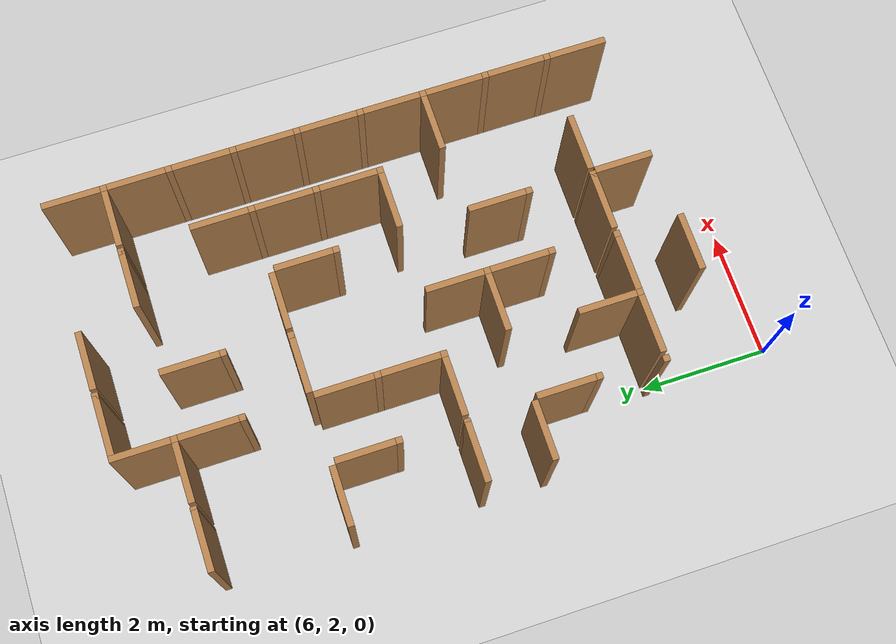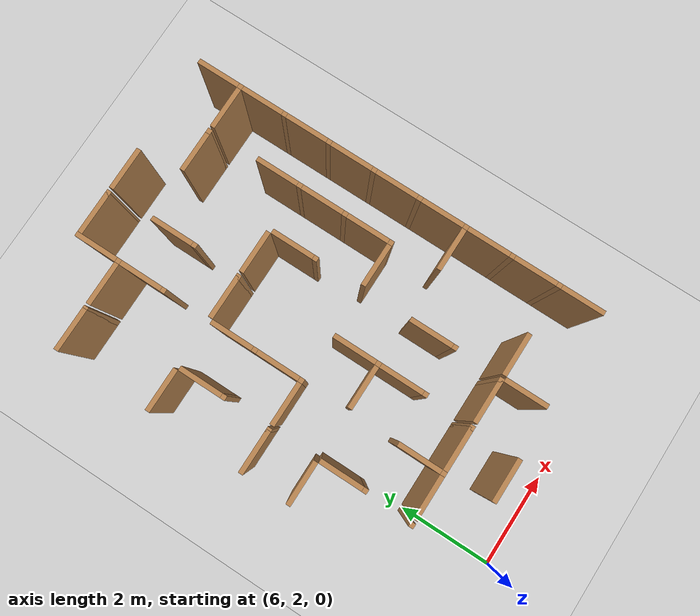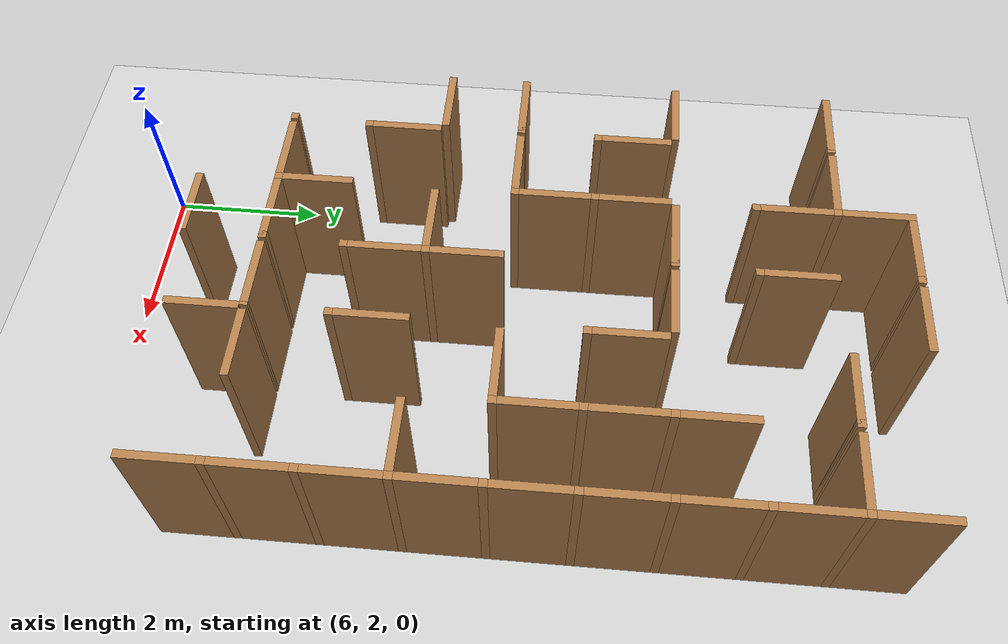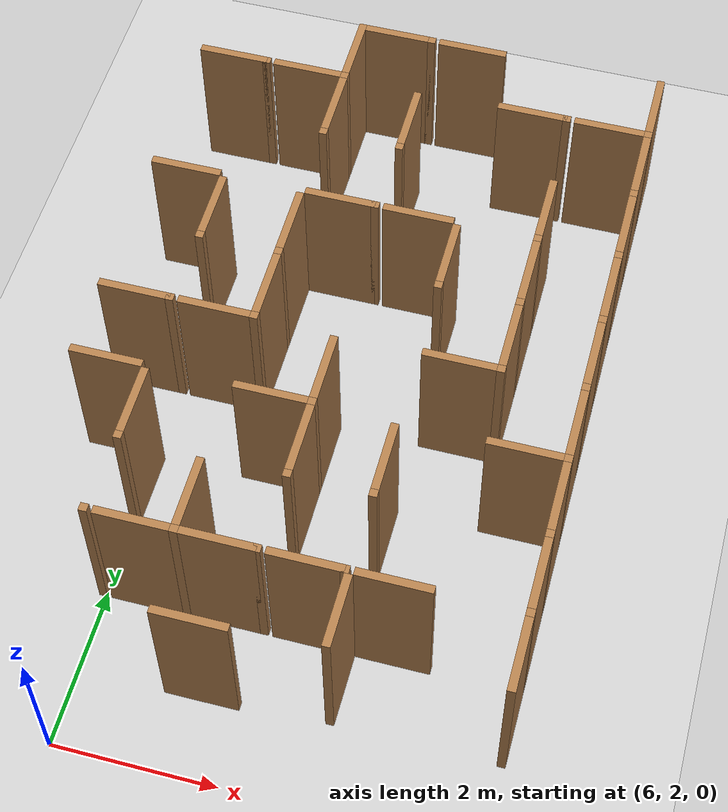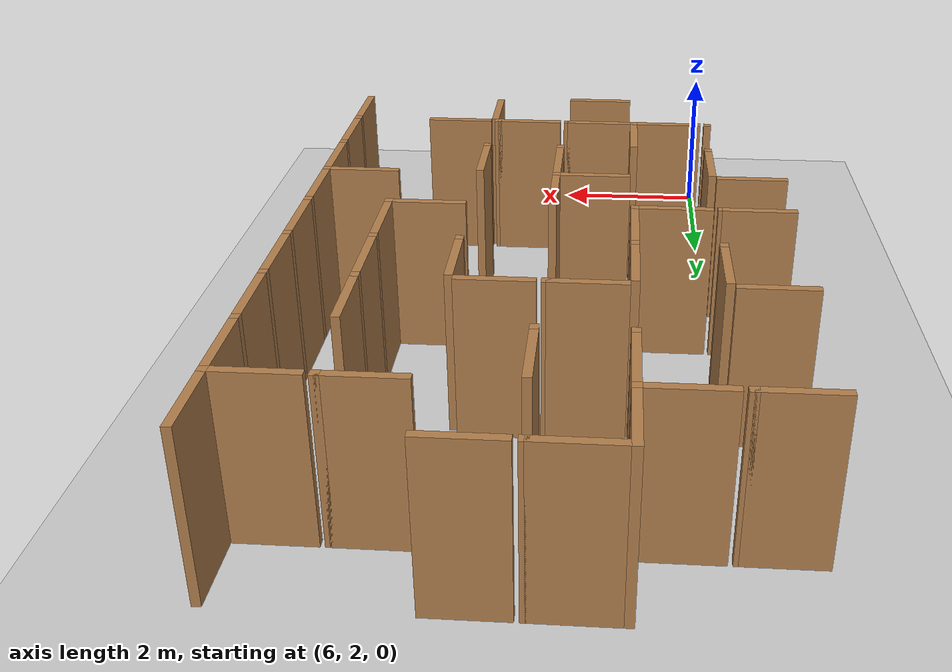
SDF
<sdf version="1.6">
 <world name="default">
  <include><uri>model://sun</uri></include>
  <model name="ground_plane">
   <static>true</static>
   <link name="link">
    <collision name="collision"><geometry><plane><size>12.0 12.0</size></plane></geometry></collision>
    <visual name="visual">
     <cast_shadows>false</cast_shadows>
     <geometry><plane><size>12.0 12.0</size></plane></geometry>
     <material>
      <script><uri>file://media/materials/scripts/gazebo.material</uri><name>Gazebo/Grey</name></script>
     </material>
    </visual>
   </link>
   <pose>6.0 6.0 0 0 0 0</pose>
  </model>
  <model name="vwall_3_9">
   <pose>9.0 3.5 1.0 0 0 0</pose>
   <link name="link">
    <collision name="collision"><geometry><box><size>0.1 0.9 2</size></box></geometry></collision>
    <visual name="visual">
     <geometry><box><size>0.1 0.9 2</size></box></geometry>
     <material>
      <script><uri>file://media/materials/scripts/gazebo.material</uri><name>Gazebo/Wood</name></script>
     </material>
    </visual>
   </link>
  </model>
  <model name="vwall_3_11">
   <pose>11.0 3.5 1.0 0 0 0</pose>
   <link name="link">
    <collision name="collision"><geometry><box><size>0.1 0.9 2</size></box></geometry></collision>
    <visual name="visual">
     <geometry><box><size>0.1 0.9 2</size></box></geometry>
     <material>
      <script><uri>file://media/materials/scripts/gazebo.material</uri><name>Gazebo/Wood</name></script>
     </material>
    </visual>
   </link>
  </model>
  <model name="vwall_4_7">
   <pose>7.0 4.5 1.0 0 0 0</pose>
   <link name="link">
    <collision name="collision"><geometry><box><size>0.1 0.9 2</size></box></geometry></collision>
    <visual name="visual">
     <geometry><box><size>0.1 0.9 2</size></box></geometry>
     <material>
      <script><uri>file://media/materials/scripts/gazebo.material</uri><name>Gazebo/Wood</name></script>
     </material>
    </visual>
   </link>
  </model>
  <model name="joint_7.0_4.0">
   <pose>7.0 4.0 1.0 0 0 0</pose>
   <link name="link">
    <collision name="collision"><geometry><box><size>0.1 0.1 2</size></box></geometry></collision>
    <visual name="visual">
     <geometry><box><size>0.1 0.1 2</size></box></geometry>
     <material>
      <script><uri>file://media/materials/scripts/gazebo.material</uri><name>Gazebo/Wood</name></script>
     </material>
    </visual>
   </link>
  </model>
  <model name="vwall_4_11">
   <pose>11.0 4.5 1.0 0 0 0</pose>
   <link name="link">
    <collision name="collision"><geometry><box><size>0.1 0.9 2</size></box></geometry></collision>
    <visual name="visual">
     <geometry><box><size>0.1 0.9 2</size></box></geometry>
     <material>
      <script><uri>file://media/materials/scripts/gazebo.material</uri><name>Gazebo/Wood</name></script>
     </material>
    </visual>
   </link>
  </model>
  <model name="joint_11.0_4.0">
   <pose>11.0 4.0 1.0 0 0 0</pose>
   <link name="link">
    <collision name="collision"><geometry><box><size>0.1 0.1 2</size></box></geometry></collision>
    <visual name="visual">
     <geometry><box><size>0.1 0.1 2</size></box></geometry>
     <material>
      <script><uri>file://media/materials/scripts/gazebo.material</uri><name>Gazebo/Wood</name></script>
     </material>
    </visual>
   </link>
  </model>
  <model name="vwall_5_6">
   <pose>6.0 5.5 1.0 0 0 0</pose>
   <link name="link">
    <collision name="collision"><geometry><box><size>0.1 0.9 2</size></box></geometry></collision>
    <visual name="visual">
     <geometry><box><size>0.1 0.9 2</size></box></geometry>
     <material>
      <script><uri>file://media/materials/scripts/gazebo.material</uri><name>Gazebo/Wood</name></script>
     </material>
    </visual>
   </link>
  </model>
  <model name="joint_6.0_5.0">
   <pose>6.0 5.0 1.0 0 0 0</pose>
   <link name="link">
    <collision name="collision"><geometry><box><size>0.1 0.1 2</size></box></geometry></collision>
    <visual name="visual">
     <geometry><box><size>0.1 0.1 2</size></box></geometry>
     <material>
      <script><uri>file://media/materials/scripts/gazebo.material</uri><name>Gazebo/Wood</name></script>
     </material>
    </visual>
   </link>
  </model>
  <model name="vwall_5_8">
   <pose>8.0 5.5 1.0 0 0 0</pose>
   <link name="link">
    <collision name="collision"><geometry><box><size>0.1 0.9 2</size></box></geometry></collision>
    <visual name="visual">
     <geometry><box><size>0.1 0.9 2</size></box></geometry>
     <material>
      <script><uri>file://media/materials/scripts/gazebo.material</uri><name>Gazebo/Wood</name></script>
     </material>
    </visual>
   </link>
  </model>
  <model name="joint_8.0_5.0">
   <pose>8.0 5.0 1.0 0 0 0</pose>
   <link name="link">
    <collision name="collision"><geometry><box><size>0.1 0.1 2</size></box></geometry></collision>
    <visual name="visual">
     <geometry><box><size>0.1 0.1 2</size></box></geometry>
     <material>
      <script><uri>file://media/materials/scripts/gazebo.material</uri><name>Gazebo/Wood</name></script>
     </material>
    </visual>
   </link>
  </model>
  <model name="vwall_5_9">
   <pose>9.0 5.5 1.0 0 0 0</pose>
   <link name="link">
    <collision name="collision"><geometry><box><size>0.1 0.9 2</size></box></geometry></collision>
    <visual name="visual">
     <geometry><box><size>0.1 0.9 2</size></box></geometry>
     <material>
      <script><uri>file://media/materials/scripts/gazebo.material</uri><name>Gazebo/Wood</name></script>
     </material>
    </visual>
   </link>
  </model>
  <model name="joint_9.0_5.0">
   <pose>9.0 5.0 1.0 0 0 0</pose>
   <link name="link">
    <collision name="collision"><geometry><box><size>0.1 0.1 2</size></box></geometry></collision>
    <visual name="visual">
     <geometry><box><size>0.1 0.1 2</size></box></geometry>
     <material>
      <script><uri>file://media/materials/scripts/gazebo.material</uri><name>Gazebo/Wood</name></script>
     </material>
    </visual>
   </link>
  </model>
  <model name="vwall_5_11">
   <pose>11.0 5.5 1.0 0 0 0</pose>
   <link name="link">
    <collision name="collision"><geometry><box><size>0.1 0.9 2</size></box></geometry></collision>
    <visual name="visual">
     <geometry><box><size>0.1 0.9 2</size></box></geometry>
     <material>
      <script><uri>file://media/materials/scripts/gazebo.material</uri><name>Gazebo/Wood</name></script>
     </material>
    </visual>
   </link>
  </model>
  <model name="joint_11.0_5.0">
   <pose>11.0 5.0 1.0 0 0 0</pose>
   <link name="link">
    <collision name="collision"><geometry><box><size>0.1 0.1 2</size></box></geometry></collision>
    <visual name="visual">
     <geometry><box><size>0.1 0.1 2</size></box></geometry>
     <material>
      <script><uri>file://media/materials/scripts/gazebo.material</uri><name>Gazebo/Wood</name></script>
     </material>
    </visual>
   </link>
  </model>
  <model name="vwall_6_8">
   <pose>8.0 6.5 1.0 0 0 0</pose>
   <link name="link">
    <collision name="collision"><geometry><box><size>0.1 0.9 2</size></box></geometry></collision>
    <visual name="visual">
     <geometry><box><size>0.1 0.9 2</size></box></geometry>
     <material>
      <script><uri>file://media/materials/scripts/gazebo.material</uri><name>Gazebo/Wood</name></script>
     </material>
    </visual>
   </link>
  </model>
  <model name="joint_8.0_6.0">
   <pose>8.0 6.0 1.0 0 0 0</pose>
   <link name="link">
    <collision name="collision"><geometry><box><size>0.1 0.1 2</size></box></geometry></collision>
    <visual name="visual">
     <geometry><box><size>0.1 0.1 2</size></box></geometry>
     <material>
      <script><uri>file://media/materials/scripts/gazebo.material</uri><name>Gazebo/Wood</name></script>
     </material>
    </visual>
   </link>
  </model>
  <model name="vwall_6_11">
   <pose>11.0 6.5 1.0 0 0 0</pose>
   <link name="link">
    <collision name="collision"><geometry><box><size>0.1 0.9 2</size></box></geometry></collision>
    <visual name="visual">
     <geometry><box><size>0.1 0.9 2</size></box></geometry>
     <material>
      <script><uri>file://media/materials/scripts/gazebo.material</uri><name>Gazebo/Wood</name></script>
     </material>
    </visual>
   </link>
  </model>
  <model name="joint_11.0_6.0">
   <pose>11.0 6.0 1.0 0 0 0</pose>
   <link name="link">
    <collision name="collision"><geometry><box><size>0.1 0.1 2</size></box></geometry></collision>
    <visual name="visual">
     <geometry><box><size>0.1 0.1 2</size></box></geometry>
     <material>
      <script><uri>file://media/materials/scripts/gazebo.material</uri><name>Gazebo/Wood</name></script>
     </material>
    </visual>
   </link>
  </model>
  <model name="vwall_7_7">
   <pose>7.0 7.5 1.0 0 0 0</pose>
   <link name="link">
    <collision name="collision"><geometry><box><size>0.1 0.9 2</size></box></geometry></collision>
    <visual name="visual">
     <geometry><box><size>0.1 0.9 2</size></box></geometry>
     <material>
      <script><uri>file://media/materials/scripts/gazebo.material</uri><name>Gazebo/Wood</name></script>
     </material>
    </visual>
   </link>
  </model>
  <model name="joint_7.0_7.0">
   <pose>7.0 7.0 1.0 0 0 0</pose>
   <link name="link">
    <collision name="collision"><geometry><box><size>0.1 0.1 2</size></box></geometry></collision>
    <visual name="visual">
     <geometry><box><size>0.1 0.1 2</size></box></geometry>
     <material>
      <script><uri>file://media/materials/scripts/gazebo.material</uri><name>Gazebo/Wood</name></script>
     </material>
    </visual>
   </link>
  </model>
  <model name="vwall_7_10">
   <pose>10.0 7.5 1.0 0 0 0</pose>
   <link name="link">
    <collision name="collision"><geometry><box><size>0.1 0.9 2</size></box></geometry></collision>
    <visual name="visual">
     <geometry><box><size>0.1 0.9 2</size></box></geometry>
     <material>
      <script><uri>file://media/materials/scripts/gazebo.material</uri><name>Gazebo/Wood</name></script>
     </material>
    </visual>
   </link>
  </model>
  <model name="joint_10.0_7.0">
   <pose>10.0 7.0 1.0 0 0 0</pose>
   <link name="link">
    <collision name="collision"><geometry><box><size>0.1 0.1 2</size></box></geometry></collision>
    <visual name="visual">
     <geometry><box><size>0.1 0.1 2</size></box></geometry>
     <material>
      <script><uri>file://media/materials/scripts/gazebo.material</uri><name>Gazebo/Wood</name></script>
     </material>
    </visual>
   </link>
  </model>
  <model name="vwall_7_11">
   <pose>11.0 7.5 1.0 0 0 0</pose>
   <link name="link">
    <collision name="collision"><geometry><box><size>0.1 0.9 2</size></box></geometry></collision>
    <visual name="visual">
     <geometry><box><size>0.1 0.9 2</size></box></geometry>
     <material>
      <script><uri>file://media/materials/scripts/gazebo.material</uri><name>Gazebo/Wood</name></script>
     </material>
    </visual>
   </link>
  </model>
  <model name="joint_11.0_7.0">
   <pose>11.0 7.0 1.0 0 0 0</pose>
   <link name="link">
    <collision name="collision"><geometry><box><size>0.1 0.1 2</size></box></geometry></collision>
    <visual name="visual">
     <geometry><box><size>0.1 0.1 2</size></box></geometry>
     <material>
      <script><uri>file://media/materials/scripts/gazebo.material</uri><name>Gazebo/Wood</name></script>
     </material>
    </visual>
   </link>
  </model>
  <model name="vwall_8_6">
   <pose>6.0 8.5 1.0 0 0 0</pose>
   <link name="link">
    <collision name="collision"><geometry><box><size>0.1 0.9 2</size></box></geometry></collision>
    <visual name="visual">
     <geometry><box><size>0.1 0.9 2</size></box></geometry>
     <material>
      <script><uri>file://media/materials/scripts/gazebo.material</uri><name>Gazebo/Wood</name></script>
     </material>
    </visual>
   </link>
  </model>
  <model name="joint_6.0_8.0">
   <pose>6.0 8.0 1.0 0 0 0</pose>
   <link name="link">
    <collision name="collision"><geometry><box><size>0.1 0.1 2</size></box></geometry></collision>
    <visual name="visual">
     <geometry><box><size>0.1 0.1 2</size></box></geometry>
     <material>
      <script><uri>file://media/materials/scripts/gazebo.material</uri><name>Gazebo/Wood</name></script>
     </material>
    </visual>
   </link>
  </model>
  <model name="vwall_8_7">
   <pose>7.0 8.5 1.0 0 0 0</pose>
   <link name="link">
    <collision name="collision"><geometry><box><size>0.1 0.9 2</size></box></geometry></collision>
    <visual name="visual">
     <geometry><box><size>0.1 0.9 2</size></box></geometry>
     <material>
      <script><uri>file://media/materials/scripts/gazebo.material</uri><name>Gazebo/Wood</name></script>
     </material>
    </visual>
   </link>
  </model>
  <model name="joint_7.0_8.0">
   <pose>7.0 8.0 1.0 0 0 0</pose>
   <link name="link">
    <collision name="collision"><geometry><box><size>0.1 0.1 2</size></box></geometry></collision>
    <visual name="visual">
     <geometry><box><size>0.1 0.1 2</size></box></geometry>
     <material>
      <script><uri>file://media/materials/scripts/gazebo.material</uri><name>Gazebo/Wood</name></script>
     </material>
    </visual>
   </link>
  </model>
  <model name="vwall_8_9">
   <pose>9.0 8.5 1.0 0 0 0</pose>
   <link name="link">
    <collision name="collision"><geometry><box><size>0.1 0.9 2</size></box></geometry></collision>
    <visual name="visual">
     <geometry><box><size>0.1 0.9 2</size></box></geometry>
     <material>
      <script><uri>file://media/materials/scripts/gazebo.material</uri><name>Gazebo/Wood</name></script>
     </material>
    </visual>
   </link>
  </model>
  <model name="joint_9.0_8.0">
   <pose>9.0 8.0 1.0 0 0 0</pose>
   <link name="link">
    <collision name="collision"><geometry><box><size>0.1 0.1 2</size></box></geometry></collision>
    <visual name="visual">
     <geometry><box><size>0.1 0.1 2</size></box></geometry>
     <material>
      <script><uri>file://media/materials/scripts/gazebo.material</uri><name>Gazebo/Wood</name></script>
     </material>
    </visual>
   </link>
  </model>
  <model name="vwall_8_10">
   <pose>10.0 8.5 1.0 0 0 0</pose>
   <link name="link">
    <collision name="collision"><geometry><box><size>0.1 0.9 2</size></box></geometry></collision>
    <visual name="visual">
     <geometry><box><size>0.1 0.9 2</size></box></geometry>
     <material>
      <script><uri>file://media/materials/scripts/gazebo.material</uri><name>Gazebo/Wood</name></script>
     </material>
    </visual>
   </link>
  </model>
  <model name="joint_10.0_8.0">
   <pose>10.0 8.0 1.0 0 0 0</pose>
   <link name="link">
    <collision name="collision"><geometry><box><size>0.1 0.1 2</size></box></geometry></collision>
    <visual name="visual">
     <geometry><box><size>0.1 0.1 2</size></box></geometry>
     <material>
      <script><uri>file://media/materials/scripts/gazebo.material</uri><name>Gazebo/Wood</name></script>
     </material>
    </visual>
   </link>
  </model>
  <model name="vwall_8_11">
   <pose>11.0 8.5 1.0 0 0 0</pose>
   <link name="link">
    <collision name="collision"><geometry><box><size>0.1 0.9 2</size></box></geometry></collision>
    <visual name="visual">
     <geometry><box><size>0.1 0.9 2</size></box></geometry>
     <material>
      <script><uri>file://media/materials/scripts/gazebo.material</uri><name>Gazebo/Wood</name></script>
     </material>
    </visual>
   </link>
  </model>
  <model name="joint_11.0_8.0">
   <pose>11.0 8.0 1.0 0 0 0</pose>
   <link name="link">
    <collision name="collision"><geometry><box><size>0.1 0.1 2</size></box></geometry></collision>
    <visual name="visual">
     <geometry><box><size>0.1 0.1 2</size></box></geometry>
     <material>
      <script><uri>file://media/materials/scripts/gazebo.material</uri><name>Gazebo/Wood</name></script>
     </material>
    </visual>
   </link>
  </model>
  <model name="vwall_9_10">
   <pose>10.0 9.5 1.0 0 0 0</pose>
   <link name="link">
    <collision name="collision"><geometry><box><size>0.1 0.9 2</size></box></geometry></collision>
    <visual name="visual">
     <geometry><box><size>0.1 0.9 2</size></box></geometry>
     <material>
      <script><uri>file://media/materials/scripts/gazebo.material</uri><name>Gazebo/Wood</name></script>
     </material>
    </visual>
   </link>
  </model>
  <model name="joint_10.0_9.0">
   <pose>10.0 9.0 1.0 0 0 0</pose>
   <link name="link">
    <collision name="collision"><geometry><box><size>0.1 0.1 2</size></box></geometry></collision>
    <visual name="visual">
     <geometry><box><size>0.1 0.1 2</size></box></geometry>
     <material>
      <script><uri>file://media/materials/scripts/gazebo.material</uri><name>Gazebo/Wood</name></script>
     </material>
    </visual>
   </link>
  </model>
  <model name="vwall_9_11">
   <pose>11.0 9.5 1.0 0 0 0</pose>
   <link name="link">
    <collision name="collision"><geometry><box><size>0.1 0.9 2</size></box></geometry></collision>
    <visual name="visual">
     <geometry><box><size>0.1 0.9 2</size></box></geometry>
     <material>
      <script><uri>file://media/materials/scripts/gazebo.material</uri><name>Gazebo/Wood</name></script>
     </material>
    </visual>
   </link>
  </model>
  <model name="joint_11.0_9.0">
   <pose>11.0 9.0 1.0 0 0 0</pose>
   <link name="link">
    <collision name="collision"><geometry><box><size>0.1 0.1 2</size></box></geometry></collision>
    <visual name="visual">
     <geometry><box><size>0.1 0.1 2</size></box></geometry>
     <material>
      <script><uri>file://media/materials/scripts/gazebo.material</uri><name>Gazebo/Wood</name></script>
     </material>
    </visual>
   </link>
  </model>
  <model name="vwall_10_7">
   <pose>7.0 10.5 1.0 0 0 0</pose>
   <link name="link">
    <collision name="collision"><geometry><box><size>0.1 0.9 2</size></box></geometry></collision>
    <visual name="visual">
     <geometry><box><size>0.1 0.9 2</size></box></geometry>
     <material>
      <script><uri>file://media/materials/scripts/gazebo.material</uri><name>Gazebo/Wood</name></script>
     </material>
    </visual>
   </link>
  </model>
  <model name="joint_7.0_10.0">
   <pose>7.0 10.0 1.0 0 0 0</pose>
   <link name="link">
    <collision name="collision"><geometry><box><size>0.1 0.1 2</size></box></geometry></collision>
    <visual name="visual">
     <geometry><box><size>0.1 0.1 2</size></box></geometry>
     <material>
      <script><uri>file://media/materials/scripts/gazebo.material</uri><name>Gazebo/Wood</name></script>
     </material>
    </visual>
   </link>
  </model>
  <model name="vwall_10_8">
   <pose>8.0 10.5 1.0 0 0 0</pose>
   <link name="link">
    <collision name="collision"><geometry><box><size>0.1 0.9 2</size></box></geometry></collision>
    <visual name="visual">
     <geometry><box><size>0.1 0.9 2</size></box></geometry>
     <material>
      <script><uri>file://media/materials/scripts/gazebo.material</uri><name>Gazebo/Wood</name></script>
     </material>
    </visual>
   </link>
  </model>
  <model name="joint_8.0_10.0">
   <pose>8.0 10.0 1.0 0 0 0</pose>
   <link name="link">
    <collision name="collision"><geometry><box><size>0.1 0.1 2</size></box></geometry></collision>
    <visual name="visual">
     <geometry><box><size>0.1 0.1 2</size></box></geometry>
     <material>
      <script><uri>file://media/materials/scripts/gazebo.material</uri><name>Gazebo/Wood</name></script>
     </material>
    </visual>
   </link>
  </model>
  <model name="vwall_10_11">
   <pose>11.0 10.5 1.0 0 0 0</pose>
   <link name="link">
    <collision name="collision"><geometry><box><size>0.1 0.9 2</size></box></geometry></collision>
    <visual name="visual">
     <geometry><box><size>0.1 0.9 2</size></box></geometry>
     <material>
      <script><uri>file://media/materials/scripts/gazebo.material</uri><name>Gazebo/Wood</name></script>
     </material>
    </visual>
   </link>
  </model>
  <model name="joint_11.0_10.0">
   <pose>11.0 10.0 1.0 0 0 0</pose>
   <link name="link">
    <collision name="collision"><geometry><box><size>0.1 0.1 2</size></box></geometry></collision>
    <visual name="visual">
     <geometry><box><size>0.1 0.1 2</size></box></geometry>
     <material>
      <script><uri>file://media/materials/scripts/gazebo.material</uri><name>Gazebo/Wood</name></script>
     </material>
    </visual>
   </link>
  </model>
  <model name="vwall_11_7">
   <pose>7.0 11.5 1.0 0 0 0</pose>
   <link name="link">
    <collision name="collision"><geometry><box><size>0.1 0.9 2</size></box></geometry></collision>
    <visual name="visual">
     <geometry><box><size>0.1 0.9 2</size></box></geometry>
     <material>
      <script><uri>file://media/materials/scripts/gazebo.material</uri><name>Gazebo/Wood</name></script>
     </material>
    </visual>
   </link>
  </model>
  <model name="joint_7.0_11.0">
   <pose>7.0 11.0 1.0 0 0 0</pose>
   <link name="link">
    <collision name="collision"><geometry><box><size>0.1 0.1 2</size></box></geometry></collision>
    <visual name="visual">
     <geometry><box><size>0.1 0.1 2</size></box></geometry>
     <material>
      <script><uri>file://media/materials/scripts/gazebo.material</uri><name>Gazebo/Wood</name></script>
     </material>
    </visual>
   </link>
  </model>
  <model name="vwall_11_11">
   <pose>11.0 11.5 1.0 0 0 0</pose>
   <link name="link">
    <collision name="collision"><geometry><box><size>0.1 0.9 2</size></box></geometry></collision>
    <visual name="visual">
     <geometry><box><size>0.1 0.9 2</size></box></geometry>
     <material>
      <script><uri>file://media/materials/scripts/gazebo.material</uri><name>Gazebo/Wood</name></script>
     </material>
    </visual>
   </link>
  </model>
  <model name="joint_11.0_11.0">
   <pose>11.0 11.0 1.0 0 0 0</pose>
   <link name="link">
    <collision name="collision"><geometry><box><size>0.1 0.1 2</size></box></geometry></collision>
    <visual name="visual">
     <geometry><box><size>0.1 0.1 2</size></box></geometry>
     <material>
      <script><uri>file://media/materials/scripts/gazebo.material</uri><name>Gazebo/Wood</name></script>
     </material>
    </visual>
   </link>
  </model>
  <model name="hwall_3_7">
   <pose>7.5 3.0 1.0 0 0 0</pose>
   <link name="link">
    <collision name="collision"><geometry><box><size>0.9 0.1 2</size></box></geometry></collision>
    <visual name="visual">
     <geometry><box><size>0.9 0.1 2</size></box></geometry>
     <material>
      <script><uri>file://media/materials/scripts/gazebo.material</uri><name>Gazebo/Wood</name></script>
     </material>
    </visual>
   </link>
  </model>
  <model name="joint_5.95_4.0">
   <pose>5.95 4.0 1.0 0 0 0</pose>
   <link name="link">
    <collision name="collision"><geometry><box><size>0.1 0.1 2</size></box></geometry></collision>
    <visual name="visual">
     <geometry><box><size>0.1 0.1 2</size></box></geometry>
     <material>
      <script><uri>file://media/materials/scripts/gazebo.material</uri><name>Gazebo/Wood</name></script>
     </material>
    </visual>
   </link>
  </model>
  <model name="hwall_4_6">
   <pose>6.5 4.0 1.0 0 0 0</pose>
   <link name="link">
    <collision name="collision"><geometry><box><size>0.9 0.1 2</size></box></geometry></collision>
    <visual name="visual">
     <geometry><box><size>0.9 0.1 2</size></box></geometry>
     <material>
      <script><uri>file://media/materials/scripts/gazebo.material</uri><name>Gazebo/Wood</name></script>
     </material>
    </visual>
   </link>
  </model>
  <model name="hwall_4_7">
   <pose>7.5 4.0 1.0 0 0 0</pose>
   <link name="link">
    <collision name="collision"><geometry><box><size>0.9 0.1 2</size></box></geometry></collision>
    <visual name="visual">
     <geometry><box><size>0.9 0.1 2</size></box></geometry>
     <material>
      <script><uri>file://media/materials/scripts/gazebo.material</uri><name>Gazebo/Wood</name></script>
     </material>
    </visual>
   </link>
  </model>
  <model name="joint_7.95_4.0">
   <pose>7.95 4.0 1.0 0 0 0</pose>
   <link name="link">
    <collision name="collision"><geometry><box><size>0.1 0.1 2</size></box></geometry></collision>
    <visual name="visual">
     <geometry><box><size>0.1 0.1 2</size></box></geometry>
     <material>
      <script><uri>file://media/materials/scripts/gazebo.material</uri><name>Gazebo/Wood</name></script>
     </material>
    </visual>
   </link>
  </model>
  <model name="hwall_4_8">
   <pose>8.5 4.0 1.0 0 0 0</pose>
   <link name="link">
    <collision name="collision"><geometry><box><size>0.9 0.1 2</size></box></geometry></collision>
    <visual name="visual">
     <geometry><box><size>0.9 0.1 2</size></box></geometry>
     <material>
      <script><uri>file://media/materials/scripts/gazebo.material</uri><name>Gazebo/Wood</name></script>
     </material>
    </visual>
   </link>
  </model>
  <model name="joint_8.95_4.0">
   <pose>8.95 4.0 1.0 0 0 0</pose>
   <link name="link">
    <collision name="collision"><geometry><box><size>0.1 0.1 2</size></box></geometry></collision>
    <visual name="visual">
     <geometry><box><size>0.1 0.1 2</size></box></geometry>
     <material>
      <script><uri>file://media/materials/scripts/gazebo.material</uri><name>Gazebo/Wood</name></script>
     </material>
    </visual>
   </link>
  </model>
  <model name="hwall_4_9">
   <pose>9.5 4.0 1.0 0 0 0</pose>
   <link name="link">
    <collision name="collision"><geometry><box><size>0.9 0.1 2</size></box></geometry></collision>
    <visual name="visual">
     <geometry><box><size>0.9 0.1 2</size></box></geometry>
     <material>
      <script><uri>file://media/materials/scripts/gazebo.material</uri><name>Gazebo/Wood</name></script>
     </material>
    </visual>
   </link>
  </model>
  <model name="hwall_6_5">
   <pose>5.5 6.0 1.0 0 0 0</pose>
   <link name="link">
    <collision name="collision"><geometry><box><size>0.9 0.1 2</size></box></geometry></collision>
    <visual name="visual">
     <geometry><box><size>0.9 0.1 2</size></box></geometry>
     <material>
      <script><uri>file://media/materials/scripts/gazebo.material</uri><name>Gazebo/Wood</name></script>
     </material>
    </visual>
   </link>
  </model>
  <model name="hwall_6_7">
   <pose>7.5 6.0 1.0 0 0 0</pose>
   <link name="link">
    <collision name="collision"><geometry><box><size>0.9 0.1 2</size></box></geometry></collision>
    <visual name="visual">
     <geometry><box><size>0.9 0.1 2</size></box></geometry>
     <material>
      <script><uri>file://media/materials/scripts/gazebo.material</uri><name>Gazebo/Wood</name></script>
     </material>
    </visual>
   </link>
  </model>
  <model name="hwall_6_10">
   <pose>10.5 6.0 1.0 0 0 0</pose>
   <link name="link">
    <collision name="collision"><geometry><box><size>0.9 0.1 2</size></box></geometry></collision>
    <visual name="visual">
     <geometry><box><size>0.9 0.1 2</size></box></geometry>
     <material>
      <script><uri>file://media/materials/scripts/gazebo.material</uri><name>Gazebo/Wood</name></script>
     </material>
    </visual>
   </link>
  </model>
  <model name="hwall_7_5">
   <pose>5.5 7.0 1.0 0 0 0</pose>
   <link name="link">
    <collision name="collision"><geometry><box><size>0.9 0.1 2</size></box></geometry></collision>
    <visual name="visual">
     <geometry><box><size>0.9 0.1 2</size></box></geometry>
     <material>
      <script><uri>file://media/materials/scripts/gazebo.material</uri><name>Gazebo/Wood</name></script>
     </material>
    </visual>
   </link>
  </model>
  <model name="joint_5.95_7.0">
   <pose>5.95 7.0 1.0 0 0 0</pose>
   <link name="link">
    <collision name="collision"><geometry><box><size>0.1 0.1 2</size></box></geometry></collision>
    <visual name="visual">
     <geometry><box><size>0.1 0.1 2</size></box></geometry>
     <material>
      <script><uri>file://media/materials/scripts/gazebo.material</uri><name>Gazebo/Wood</name></script>
     </material>
    </visual>
   </link>
  </model>
  <model name="hwall_7_6">
   <pose>6.5 7.0 1.0 0 0 0</pose>
   <link name="link">
    <collision name="collision"><geometry><box><size>0.9 0.1 2</size></box></geometry></collision>
    <visual name="visual">
     <geometry><box><size>0.9 0.1 2</size></box></geometry>
     <material>
      <script><uri>file://media/materials/scripts/gazebo.material</uri><name>Gazebo/Wood</name></script>
     </material>
    </visual>
   </link>
  </model>
  <model name="hwall_7_9">
   <pose>9.5 7.0 1.0 0 0 0</pose>
   <link name="link">
    <collision name="collision"><geometry><box><size>0.9 0.1 2</size></box></geometry></collision>
    <visual name="visual">
     <geometry><box><size>0.9 0.1 2</size></box></geometry>
     <material>
      <script><uri>file://media/materials/scripts/gazebo.material</uri><name>Gazebo/Wood</name></script>
     </material>
    </visual>
   </link>
  </model>
  <model name="hwall_9_5">
   <pose>5.5 9.0 1.0 0 0 0</pose>
   <link name="link">
    <collision name="collision"><geometry><box><size>0.9 0.1 2</size></box></geometry></collision>
    <visual name="visual">
     <geometry><box><size>0.9 0.1 2</size></box></geometry>
     <material>
      <script><uri>file://media/materials/scripts/gazebo.material</uri><name>Gazebo/Wood</name></script>
     </material>
    </visual>
   </link>
  </model>
  <model name="hwall_9_7">
   <pose>7.5 9.0 1.0 0 0 0</pose>
   <link name="link">
    <collision name="collision"><geometry><box><size>0.9 0.1 2</size></box></geometry></collision>
    <visual name="visual">
     <geometry><box><size>0.9 0.1 2</size></box></geometry>
     <material>
      <script><uri>file://media/materials/scripts/gazebo.material</uri><name>Gazebo/Wood</name></script>
     </material>
    </visual>
   </link>
  </model>
  <model name="joint_7.95_9.0">
   <pose>7.95 9.0 1.0 0 0 0</pose>
   <link name="link">
    <collision name="collision"><geometry><box><size>0.1 0.1 2</size></box></geometry></collision>
    <visual name="visual">
     <geometry><box><size>0.1 0.1 2</size></box></geometry>
     <material>
      <script><uri>file://media/materials/scripts/gazebo.material</uri><name>Gazebo/Wood</name></script>
     </material>
    </visual>
   </link>
  </model>
  <model name="hwall_9_8">
   <pose>8.5 9.0 1.0 0 0 0</pose>
   <link name="link">
    <collision name="collision"><geometry><box><size>0.9 0.1 2</size></box></geometry></collision>
    <visual name="visual">
     <geometry><box><size>0.9 0.1 2</size></box></geometry>
     <material>
      <script><uri>file://media/materials/scripts/gazebo.material</uri><name>Gazebo/Wood</name></script>
     </material>
    </visual>
   </link>
  </model>
  <model name="hwall_11_5">
   <pose>5.5 11.0 1.0 0 0 0</pose>
   <link name="link">
    <collision name="collision"><geometry><box><size>0.9 0.1 2</size></box></geometry></collision>
    <visual name="visual">
     <geometry><box><size>0.9 0.1 2</size></box></geometry>
     <material>
      <script><uri>file://media/materials/scripts/gazebo.material</uri><name>Gazebo/Wood</name></script>
     </material>
    </visual>
   </link>
  </model>
  <model name="joint_5.95_11.0">
   <pose>5.95 11.0 1.0 0 0 0</pose>
   <link name="link">
    <collision name="collision"><geometry><box><size>0.1 0.1 2</size></box></geometry></collision>
    <visual name="visual">
     <geometry><box><size>0.1 0.1 2</size></box></geometry>
     <material>
      <script><uri>file://media/materials/scripts/gazebo.material</uri><name>Gazebo/Wood</name></script>
     </material>
    </visual>
   </link>
  </model>
  <model name="hwall_11_6">
   <pose>6.5 11.0 1.0 0 0 0</pose>
   <link name="link">
    <collision name="collision"><geometry><box><size>0.9 0.1 2</size></box></geometry></collision>
    <visual name="visual">
     <geometry><box><size>0.9 0.1 2</size></box></geometry>
     <material>
      <script><uri>file://media/materials/scripts/gazebo.material</uri><name>Gazebo/Wood</name></script>
     </material>
    </visual>
   </link>
  </model>
  <model name="hwall_11_7">
   <pose>7.5 11.9 1.0 0 0 0</pose>
   <link name="link">
    <collision name="collision"><geometry><box><size>0.9 0.1 2</size></box></geometry></collision>
    <visual name="visual">
     <geometry><box><size>0.9 0.1 2</size></box></geometry>
     <material>
      <script><uri>file://media/materials/scripts/gazebo.material</uri><name>Gazebo/Wood</name></script>
     </material>
    </visual>
   </link>
  </model>
  <model name="joint_7.95_11.9">
   <pose>7.95 11.9 1.0 0 0 0</pose>
   <link name="link">
    <collision name="collision"><geometry><box><size>0.1 0.1 2</size></box></geometry></collision>
    <visual name="visual">
     <geometry><box><size>0.1 0.1 2</size></box></geometry>
     <material>
      <script><uri>file://media/materials/scripts/gazebo.material</uri><name>Gazebo/Wood</name></script>
     </material>
    </visual>
   </link>
  </model>
  <model name="hwall_11_8">
   <pose>8.5 11.9 1.0 0 0 0</pose>
   <link name="link">
    <collision name="collision"><geometry><box><size>0.9 0.1 2</size></box></geometry></collision>
    <visual name="visual">
     <geometry><box><size>0.9 0.1 2</size></box></geometry>
     <material>
      <script><uri>file://media/materials/scripts/gazebo.material</uri><name>Gazebo/Wood</name></script>
     </material>
    </visual>
   </link>
  </model>
  <model name="hwall_11_9">
   <pose>9.5 11.0 1.0 0 0 0</pose>
   <link name="link">
    <collision name="collision"><geometry><box><size>0.9 0.1 2</size></box></geometry></collision>
    <visual name="visual">
     <geometry><box><size>0.9 0.1 2</size></box></geometry>
     <material>
      <script><uri>file://media/materials/scripts/gazebo.material</uri><name>Gazebo/Wood</name></script>
     </material>
    </visual>
   </link>
  </model>
  <model name="joint_9.95_11.0">
   <pose>9.95 11.0 1.0 0 0 0</pose>
   <link name="link">
    <collision name="collision"><geometry><box><size>0.1 0.1 2</size></box></geometry></collision>
    <visual name="visual">
     <geometry><box><size>0.1 0.1 2</size></box></geometry>
     <material>
      <script><uri>file://media/materials/scripts/gazebo.material</uri><name>Gazebo/Wood</name></script>
     </material>
    </visual>
   </link>
  </model>
  <model name="hwall_11_10">
   <pose>10.5 11.0 1.0 0 0 0</pose>
   <link name="link">
    <collision name="collision"><geometry><box><size>0.9 0.1 2</size></box></geometry></collision>
    <visual name="visual">
     <geometry><box><size>0.9 0.1 2</size></box></geometry>
     <material>
      <script><uri>file://media/materials/scripts/gazebo.material</uri><name>Gazebo/Wood</name></script>
     </material>
    </visual>
   </link>
  </model>
 </world>
</sdf>
